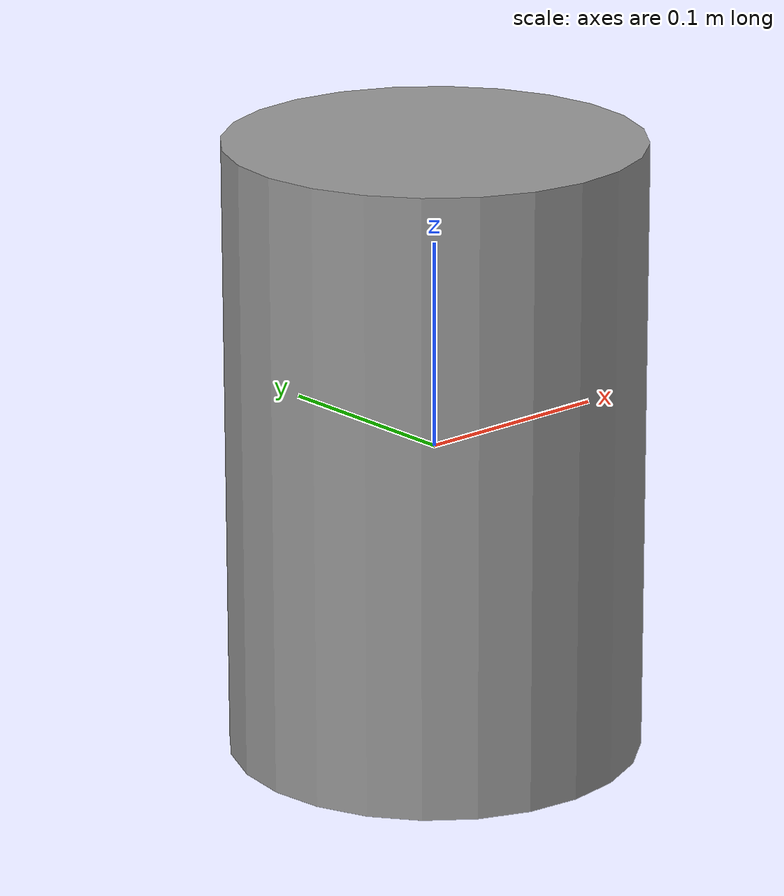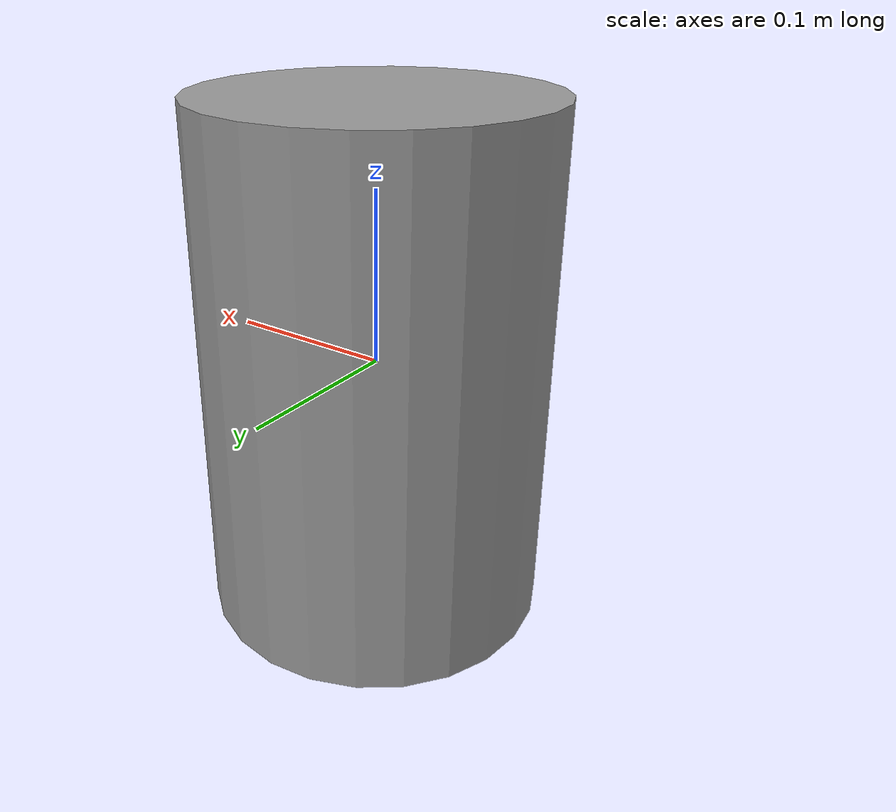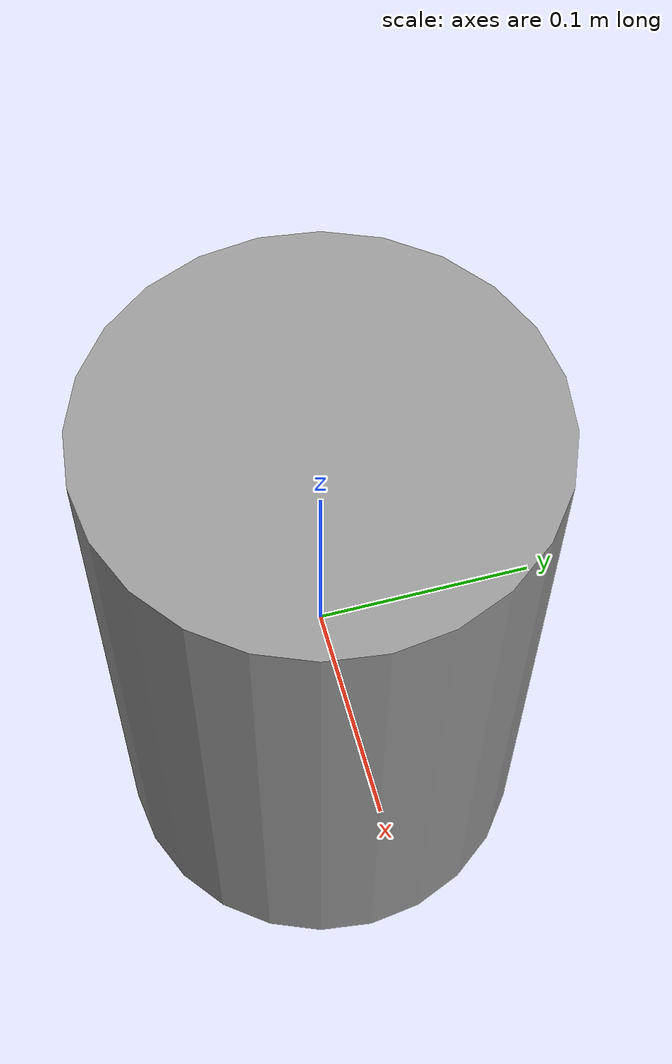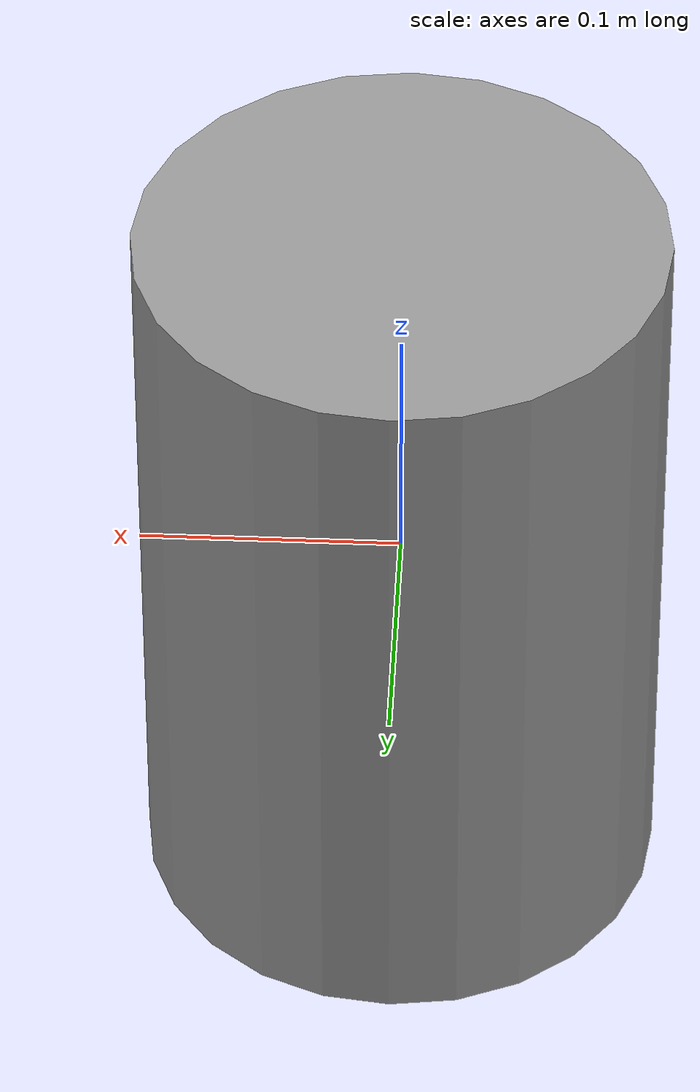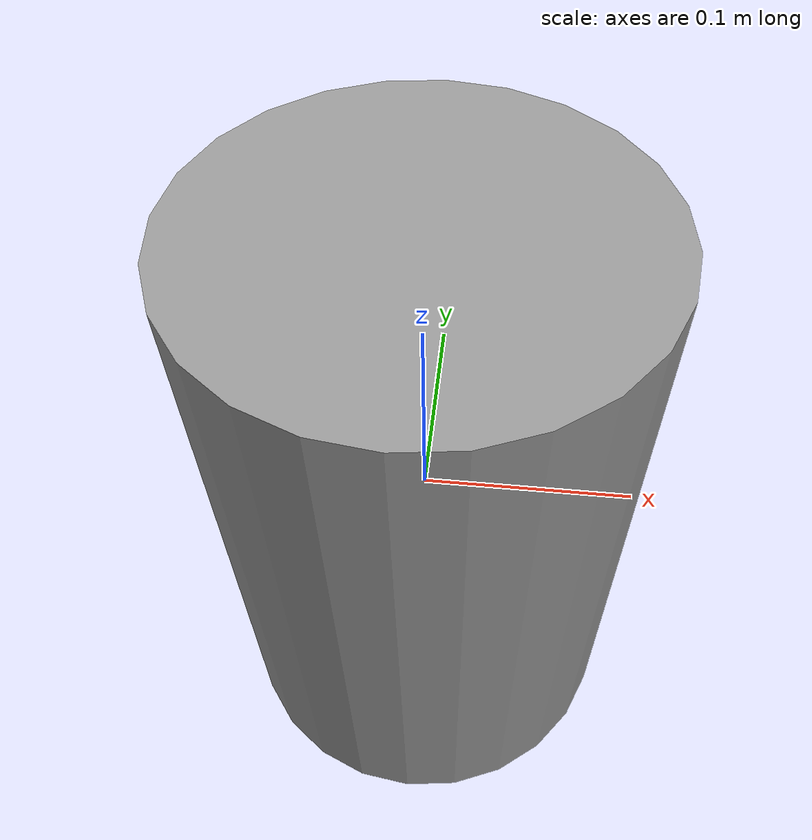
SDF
<?xml version="1.0" ?>
<sdf version="1.5">
  <world name="default">
    <!-- A ground plane -->

    <physics type="dart">
      <gravity>0.0 0.0 -9.81</gravity>
      <real_time_update_rate>0.000000</real_time_update_rate>
      <max_step_size>0.001000</max_step_size>
    </physics>

    <model name="skeleton 1">
      <pose>0 0 0 0 0 0</pose>
      <link name="link 1">
        <pose>0 0 0  0 0 0</pose>
        <self_collide>0</self_collide>
        <inertial>
          <pose>0 0 0  0 0 0</pose>
        </inertial>
        <visual name="visual 1">
          <pose>0 0 0  0 0 0</pose>
          <geometry>
            <cylinder>
              <radius>0.1</radius>
              <length>0.3</length>
            </cylinder>
          </geometry>
          <material>
            <script>
              <uri>file://media/materials/scripts/gazebo.material</uri>
              <name>Gazebo/Grey</name>
            </script>
          </material>
        </visual>
        <collision name="collision 1">
          <pose>0 0 0  0 0 0</pose>
          <geometry>
            <cylinder>
              <radius>0.1</radius>
              <length>0.3</length>
            </cylinder>
          </geometry>
        </collision>
      </link>
      <link name="link 2">
        <pose>0 0 0  0 0 0</pose>
        <self_collide>0</self_collide>
        <inertial>
          <pose>0 0 0  0 0 0</pose>
        </inertial>
        <visual name="visual 2">
          <pose>0 0 0  0 0 0</pose>
          <geometry>
            <cylinder>
              <radius>0.1</radius>
              <length>0.3</length>
            </cylinder>
          </geometry>
          <material>
            <script>
              <uri>file://media/materials/scripts/gazebo.material</uri>
              <name>Gazebo/Grey</name>
            </script>
          </material>
        </visual>
        <collision name="collision 2">
          <pose>0 0 0  0 0 0</pose>
          <geometry>
            <cylinder>
              <radius>0.1</radius>
              <length>0.3</length>
            </cylinder>
          </geometry>
        </collision>
      </link>
      <link name="link 3">
        <pose>0 0 0  0 0 0</pose>
        <self_collide>0</self_collide>
        <inertial>
          <pose>0 0 0  0 0 0</pose>
        </inertial>
        <visual name="visual 3">
          <pose>0 0 0  0 0 0</pose>
          <geometry>
            <cylinder>
              <radius>0.1</radius>
              <length>0.3</length>
            </cylinder>
          </geometry>
          <material>
            <script>
              <uri>file://media/materials/scripts/gazebo.material</uri>
              <name>Gazebo/Grey</name>
            </script>
          </material>
        </visual>
        <collision name="collision 3">
          <pose>0 0 0  0 0 0</pose>
          <geometry>
            <cylinder>
              <radius>0.1</radius>
              <length>0.3</length>
            </cylinder>
          </geometry>
        </collision>
      </link>
      <link name="link 4">
        <pose>0 0 0  0 0 0</pose>
        <self_collide>0</self_collide>
        <inertial>
          <pose>0 0 0  0 0 0</pose>
        </inertial>
        <visual name="visual 4">
          <pose>0 0 0  0 0 0</pose>
          <geometry>
            <cylinder>
              <radius>0.1</radius>
              <length>0.3</length>
            </cylinder>
          </geometry>
          <material>
            <script>
              <uri>file://media/materials/scripts/gazebo.material</uri>
              <name>Gazebo/Grey</name>
            </script>
          </material>
        </visual>
        <collision name="collision 4">
          <pose>0 0 0  0 0 0</pose>
          <geometry>
            <cylinder>
              <radius>0.1</radius>
              <length>0.3</length>
            </cylinder>
          </geometry>
        </collision>
      </link>
      <link name="link 5">
        <pose>0 0 0  0 0 0</pose>
        <self_collide>0</self_collide>
        <inertial>
          <pose>0 0 0  0 0 0</pose>
        </inertial>
        <visual name="visual 5">
          <pose>0 0 0  0 0 0</pose>
          <geometry>
            <cylinder>
              <radius>0.1</radius>
              <length>0.3</length>
            </cylinder>
          </geometry>
          <material>
            <script>
              <uri>file://media/materials/scripts/gazebo.material</uri>
              <name>Gazebo/Grey</name>
            </script>
          </material>
        </visual>
        <collision name="collision 5">
          <pose>0 0 0  0 0 0</pose>
          <geometry>
            <cylinder>
              <radius>0.1</radius>
              <length>0.3</length>
            </cylinder>
          </geometry>
        </collision>
      </link>
      <joint name="joint_prismatic" type="prismatic">
        <pose>0 0 0  0 0 0</pose>
        <use_parent_model_frame>0</use_parent_model_frame>
        <parent>link 1</parent>
        <child>link 2</child>
        <axis>
          <xyz>0 1 2</xyz>
          <limit>
            <lower>0</lower>
            <upper>3</upper>
            <effort>1</effort>
            <velocity>2</velocity>
          </limit>
          <dynamics>
            <damping>0</damping>
            <friction>1</friction>
            <spring_reference>2</spring_reference>
            <spring_stiffness>3</spring_stiffness>
          </dynamics>
        </axis>
      </joint>
      <joint name="joint_revolute" type="revolute">
        <pose>0 0 0  0 0 0</pose>
        <use_parent_model_frame>0</use_parent_model_frame>
        <parent>link 2</parent>
        <child>link 3</child>
        <axis>
          <xyz>0 1 2</xyz>
          <limit>
            <lower>0</lower>
            <upper>3</upper>
            <effort>1</effort>
            <velocity>2</velocity>
          </limit>
          <dynamics>
            <damping>0</damping>
            <friction>1</friction>
            <spring_reference>2</spring_reference>
            <spring_stiffness>3</spring_stiffness>
          </dynamics>
        </axis>
      </joint>
      <joint name="joint_screw" type="screw">
        <pose>0 0 0  0 0 0</pose>
        <use_parent_model_frame>0</use_parent_model_frame>
        <parent>link 3</parent>
        <child>link 4</child>
        <axis>
          <xyz>0 1 2</xyz>
          <limit>
            <lower>0</lower>
            <upper>3</upper>
            <effort>1</effort>
            <velocity>2</velocity>
          </limit>
          <dynamics>
            <damping>0</damping>
            <friction>1</friction>
            <spring_reference>2</spring_reference>
            <spring_stiffness>3</spring_stiffness>
          </dynamics>
        </axis>
      </joint>
      <joint name="joint_revolute2" type="revolute2">
        <pose>0 0 0  0 0 0</pose>
        <use_parent_model_frame>0</use_parent_model_frame>
        <parent>link 4</parent>
        <child>link 5</child>
        <axis>
          <xyz>0 1 2</xyz>
          <limit>
            <lower>0</lower>
            <upper>3</upper>
            <effort>1</effort>
            <velocity>2</velocity>
          </limit>
          <dynamics>
            <damping>0</damping>
            <friction>1</friction>
            <spring_reference>2</spring_reference>
            <spring_stiffness>3</spring_stiffness>
          </dynamics>
        </axis>
        <axis2>
          <xyz>1 2 3</xyz>
          <limit>
            <lower>0</lower>
            <upper>3</upper>
            <effort>1</effort>
            <velocity>2</velocity>
          </limit>
          <dynamics>
            <damping>0</damping>
            <friction>1</friction>
            <spring_reference>2</spring_reference>
            <spring_stiffness>3</spring_stiffness>
          </dynamics>
        </axis2>
      </joint>
    </model>

  </world>
</sdf>
